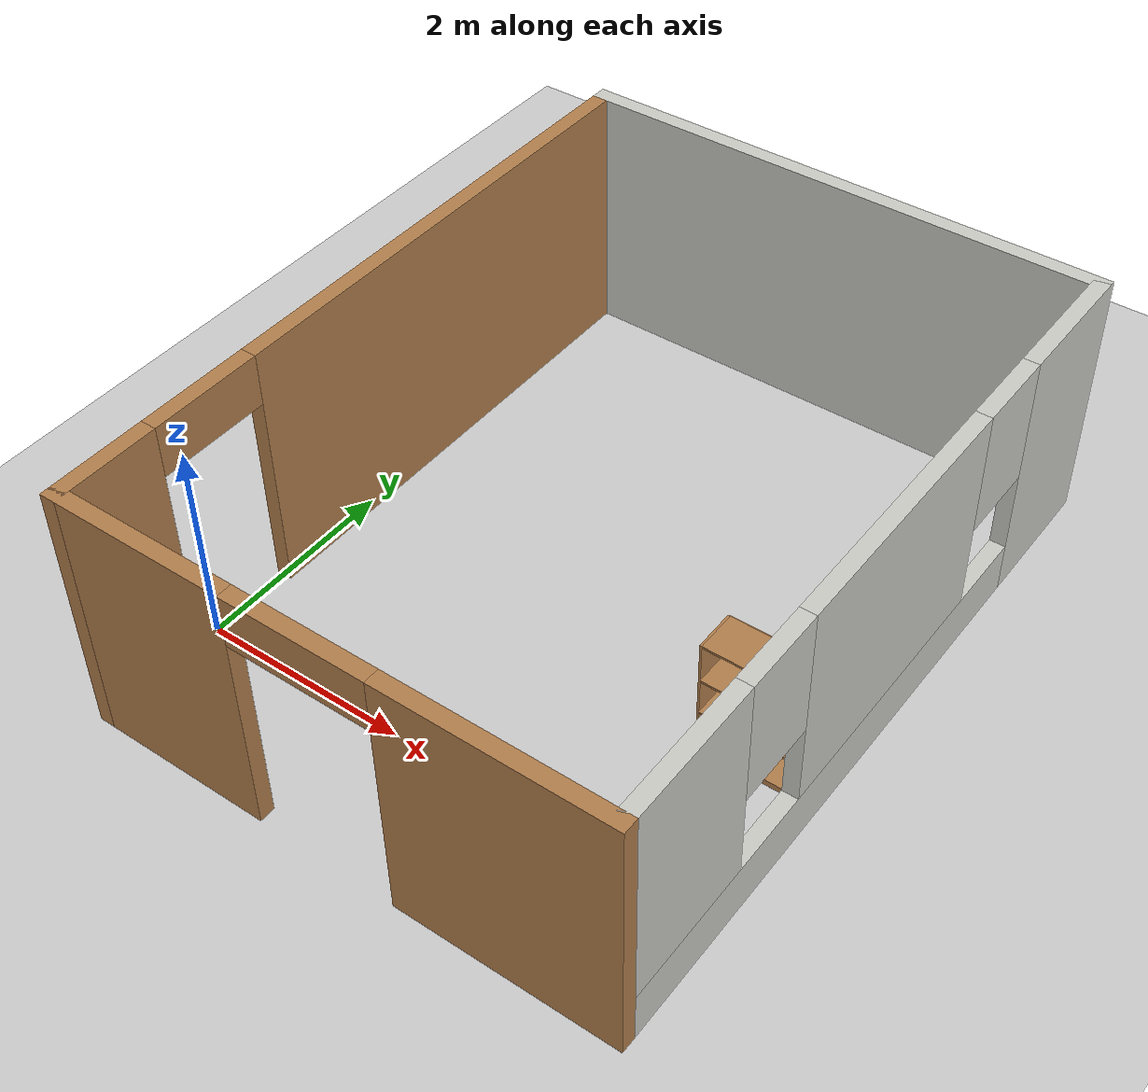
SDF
<sdf version="1.7">
 <world name="default">
  <model name="ground_plane">
   <static>1</static>
   <link name="link">
    <collision name="collision">
     <geometry><plane><normal>0 0 1</normal><size>100 100</size></plane></geometry>
     <surface>
      <contact><collide_bitmask>65535</collide_bitmask></contact>
      <friction><ode><mu>100</mu><mu2>50</mu2></ode></friction>
     </surface>
    </collision>
    <visual name="visual">
     <cast_shadows>0</cast_shadows>
     <geometry><plane><normal>0 0 1</normal><size>100 100</size></plane></geometry>
     <material>
      <script><uri>file://media/materials/scripts/gazebo.material</uri><name>Gazebo/Grey</name></script>
     </material>
    </visual>
   </link>
  </model>
  <model name="basic_house_model">
   <link name="Wall_27">
    <pose>3.5 5.975 0 0 -0 0</pose>
    <visual name="Wall_27_Visual">
     <pose>0 0 1.25 0 -0 0</pose>
     <geometry><box><size>5.25 0.15 2.5</size></box></geometry>
     <material>
      <script><uri>file://media/materials/scripts/gazebo.material</uri><name>Gazebo/CeilingTiled</name></script>
      <ambient>1 1 1 1</ambient>
      <shader type="pixel"/>
     </material>
     <meta><layer>0</layer></meta>
    </visual>
    <collision name="Wall_27_Collision">
     <pose>0 0 1.25 0 -0 0</pose>
     <geometry><box><size>5.25 0.15 2.5</size></box></geometry>
     <surface>
      <friction>
       <ode><mu>1</mu><mu2>1</mu2><fdir1>0 0 0</fdir1><slip1>0</slip1><slip2>0</slip2></ode>
       <torsional>
        <coefficient>1</coefficient>
        <patch_radius>0</patch_radius>
        <surface_radius>0</surface_radius>
        <use_patch_radius>1</use_patch_radius>
        <ode><slip>0</slip></ode>
       </torsional>
      </friction>
      <bounce><restitution_coefficient>0</restitution_coefficient><threshold>1e+06</threshold></bounce>
      <contact>
       <collide_without_contact>0</collide_without_contact>
       <collide_without_contact_bitmask>1</collide_without_contact_bitmask>
       <collide_bitmask>1</collide_bitmask>
       <ode>
        <soft_cfm>0</soft_cfm>
        <soft_erp>0.2</soft_erp>
        <kp>1e+13</kp>
        <kd>1</kd>
        <max_vel>0.01</max_vel>
        <min_depth>0</min_depth>
       </ode>
       <bullet>
        <split_impulse>1</split_impulse>
        <split_impulse_penetration_threshold>-0.01</split_impulse_penetration_threshold>
        <soft_cfm>0</soft_cfm>
        <soft_erp>0.2</soft_erp>
        <kp>1e+13</kp>
        <kd>1</kd>
       </bullet>
      </contact>
     </surface>
    </collision>
   </link>
   <link name="Wall_6">
    <pose>6.05 2.55 0 0 0 -1.5708</pose>
    <visual name="Wall_6_Visual_0">
     <pose>-2.82309 0 1.25 0 -0 0</pose>
     <geometry><box><size>1.35381 0.15 2.5</size></box></geometry>
     <material>
      <script><uri>file://media/materials/scripts/gazebo.material</uri><name>Gazebo/CeilingTiled</name></script>
      <ambient>1 1 1 1</ambient>
      <shader type="pixel"/>
     </material>
     <meta><layer>0</layer></meta>
    </visual>
    <visual name="Wall_6_Visual_1">
     <pose>0.676907 0 0.25 0 -0 0</pose>
     <geometry><box><size>5.64619 0.15 0.5</size></box></geometry>
     <material>
      <script><uri>file://media/materials/scripts/gazebo.material</uri><name>Gazebo/CeilingTiled</name></script>
      <ambient>1 1 1 1</ambient>
      <shader type="pixel"/>
     </material>
     <meta><layer>0</layer></meta>
    </visual>
    <visual name="Wall_6_Visual_2">
     <pose>-0.061529 0 1.5 0 -0 0</pose>
     <geometry><box><size>2.56931 0.15 2</size></box></geometry>
     <material>
      <script><uri>file://media/materials/scripts/gazebo.material</uri><name>Gazebo/CeilingTiled</name></script>
      <ambient>1 1 1 1</ambient>
      <shader type="pixel"/>
     </material>
     <meta><layer>0</layer></meta>
    </visual>
    <visual name="Wall_6_Visual_3">
     <pose>2.76156 0 1.5 0 -0 0</pose>
     <geometry><box><size>1.47687 0.15 2</size></box></geometry>
     <material>
      <script><uri>file://media/materials/scripts/gazebo.material</uri><name>Gazebo/CeilingTiled</name></script>
      <ambient>1 1 1 1</ambient>
      <shader type="pixel"/>
     </material>
     <meta><layer>0</layer></meta>
    </visual>
    <visual name="Wall_6_Visual_4">
     <pose>-1.74619 0 1.9 0 -0 0</pose>
     <geometry><box><size>0.8 0.15 1.2</size></box></geometry>
     <material>
      <script><uri>file://media/materials/scripts/gazebo.material</uri><name>Gazebo/CeilingTiled</name></script>
      <ambient>1 1 1 1</ambient>
      <shader type="pixel"/>
     </material>
     <meta><layer>0</layer></meta>
    </visual>
    <visual name="Wall_6_Visual_5">
     <pose>1.62313 0 1.9 0 -0 0</pose>
     <geometry><box><size>0.8 0.15 1.2</size></box></geometry>
     <material>
      <script><uri>file://media/materials/scripts/gazebo.material</uri><name>Gazebo/CeilingTiled</name></script>
      <ambient>1 1 1 1</ambient>
      <shader type="pixel"/>
     </material>
     <meta><layer>0</layer></meta>
    </visual>
    <collision name="Wall_6_Collision_0">
     <pose>-2.82309 0 1.25 0 -0 0</pose>
     <geometry><box><size>1.35381 0.15 2.5</size></box></geometry>
     <surface>
      <friction>
       <ode><mu>1</mu><mu2>1</mu2><fdir1>0 0 0</fdir1><slip1>0</slip1><slip2>0</slip2></ode>
       <torsional>
        <coefficient>1</coefficient>
        <patch_radius>0</patch_radius>
        <surface_radius>0</surface_radius>
        <use_patch_radius>1</use_patch_radius>
        <ode><slip>0</slip></ode>
       </torsional>
      </friction>
      <bounce><restitution_coefficient>0</restitution_coefficient><threshold>1e+06</threshold></bounce>
      <contact>
       <collide_without_contact>0</collide_without_contact>
       <collide_without_contact_bitmask>1</collide_without_contact_bitmask>
       <collide_bitmask>1</collide_bitmask>
       <ode>
        <soft_cfm>0</soft_cfm>
        <soft_erp>0.2</soft_erp>
        <kp>1e+13</kp>
        <kd>1</kd>
        <max_vel>0.01</max_vel>
        <min_depth>0</min_depth>
       </ode>
       <bullet>
        <split_impulse>1</split_impulse>
        <split_impulse_penetration_threshold>-0.01</split_impulse_penetration_threshold>
        <soft_cfm>0</soft_cfm>
        <soft_erp>0.2</soft_erp>
        <kp>1e+13</kp>
        <kd>1</kd>
       </bullet>
      </contact>
     </surface>
    </collision>
    <collision name="Wall_6_Collision_1">
     <pose>0.676907 0 0.25 0 -0 0</pose>
     <geometry><box><size>5.64619 0.15 0.5</size></box></geometry>
     <surface>
      <friction>
       <ode><mu>1</mu><mu2>1</mu2><fdir1>0 0 0</fdir1><slip1>0</slip1><slip2>0</slip2></ode>
       <torsional>
        <coefficient>1</coefficient>
        <patch_radius>0</patch_radius>
        <surface_radius>0</surface_radius>
        <use_patch_radius>1</use_patch_radius>
        <ode><slip>0</slip></ode>
       </torsional>
      </friction>
      <bounce><restitution_coefficient>0</restitution_coefficient><threshold>1e+06</threshold></bounce>
      <contact>
       <collide_without_contact>0</collide_without_contact>
       <collide_without_contact_bitmask>1</collide_without_contact_bitmask>
       <collide_bitmask>1</collide_bitmask>
       <ode>
        <soft_cfm>0</soft_cfm>
        <soft_erp>0.2</soft_erp>
        <kp>1e+13</kp>
        <kd>1</kd>
        <max_vel>0.01</max_vel>
        <min_depth>0</min_depth>
       </ode>
       <bullet>
        <split_impulse>1</split_impulse>
        <split_impulse_penetration_threshold>-0.01</split_impulse_penetration_threshold>
        <soft_cfm>0</soft_cfm>
        <soft_erp>0.2</soft_erp>
        <kp>1e+13</kp>
        <kd>1</kd>
       </bullet>
      </contact>
     </surface>
    </collision>
    <collision name="Wall_6_Collision_2">
     <pose>-0.061529 0 1.5 0 -0 0</pose>
     <geometry><box><size>2.56931 0.15 2</size></box></geometry>
     <surface>
      <friction>
       <ode><mu>1</mu><mu2>1</mu2><fdir1>0 0 0</fdir1><slip1>0</slip1><slip2>0</slip2></ode>
       <torsional>
        <coefficient>1</coefficient>
        <patch_radius>0</patch_radius>
        <surface_radius>0</surface_radius>
        <use_patch_radius>1</use_patch_radius>
        <ode><slip>0</slip></ode>
       </torsional>
      </friction>
      <bounce><restitution_coefficient>0</restitution_coefficient><threshold>1e+06</threshold></bounce>
      <contact>
       <collide_without_contact>0</collide_without_contact>
       <collide_without_contact_bitmask>1</collide_without_contact_bitmask>
       <collide_bitmask>1</collide_bitmask>
       <ode>
        <soft_cfm>0</soft_cfm>
        <soft_erp>0.2</soft_erp>
        <kp>1e+13</kp>
        <kd>1</kd>
        <max_vel>0.01</max_vel>
        <min_depth>0</min_depth>
       </ode>
       <bullet>
        <split_impulse>1</split_impulse>
        <split_impulse_penetration_threshold>-0.01</split_impulse_penetration_threshold>
        <soft_cfm>0</soft_cfm>
        <soft_erp>0.2</soft_erp>
        <kp>1e+13</kp>
        <kd>1</kd>
       </bullet>
      </contact>
     </surface>
    </collision>
    <collision name="Wall_6_Collision_4">
     <pose>-1.74619 0 1.9 0 -0 0</pose>
     <geometry><box><size>0.8 0.15 1.2</size></box></geometry>
     <surface>
      <friction>
       <ode><mu>1</mu><mu2>1</mu2><fdir1>0 0 0</fdir1><slip1>0</slip1><slip2>0</slip2></ode>
       <torsional>
        <coefficient>1</coefficient>
        <patch_radius>0</patch_radius>
        <surface_radius>0</surface_radius>
        <use_patch_radius>1</use_patch_radius>
        <ode><slip>0</slip></ode>
       </torsional>
      </friction>
      <bounce><restitution_coefficient>0</restitution_coefficient><threshold>1e+06</threshold></bounce>
      <contact>
       <collide_without_contact>0</collide_without_contact>
       <collide_without_contact_bitmask>1</collide_without_contact_bitmask>
       <collide_bitmask>1</collide_bitmask>
       <ode>
        <soft_cfm>0</soft_cfm>
        <soft_erp>0.2</soft_erp>
        <kp>1e+13</kp>
        <kd>1</kd>
        <max_vel>0.01</max_vel>
        <min_depth>0</min_depth>
       </ode>
       <bullet>
        <split_impulse>1</split_impulse>
        <split_impulse_penetration_threshold>-0.01</split_impulse_penetration_threshold>
        <soft_cfm>0</soft_cfm>
        <soft_erp>0.2</soft_erp>
        <kp>1e+13</kp>
        <kd>1</kd>
       </bullet>
      </contact>
     </surface>
    </collision>
    <collision name="Wall_6_Collision_3">
     <pose>2.76156 0 1.5 0 -0 0</pose>
     <geometry><box><size>1.47687 0.15 2</size></box></geometry>
     <surface>
      <friction>
       <ode><mu>1</mu><mu2>1</mu2><fdir1>0 0 0</fdir1><slip1>0</slip1><slip2>0</slip2></ode>
       <torsional>
        <coefficient>1</coefficient>
        <patch_radius>0</patch_radius>
        <surface_radius>0</surface_radius>
        <use_patch_radius>1</use_patch_radius>
        <ode><slip>0</slip></ode>
       </torsional>
      </friction>
      <bounce><restitution_coefficient>0</restitution_coefficient><threshold>1e+06</threshold></bounce>
      <contact>
       <collide_without_contact>0</collide_without_contact>
       <collide_without_contact_bitmask>1</collide_without_contact_bitmask>
       <collide_bitmask>1</collide_bitmask>
       <ode>
        <soft_cfm>0</soft_cfm>
        <soft_erp>0.2</soft_erp>
        <kp>1e+13</kp>
        <kd>1</kd>
        <max_vel>0.01</max_vel>
        <min_depth>0</min_depth>
       </ode>
       <bullet>
        <split_impulse>1</split_impulse>
        <split_impulse_penetration_threshold>-0.01</split_impulse_penetration_threshold>
        <soft_cfm>0</soft_cfm>
        <soft_erp>0.2</soft_erp>
        <kp>1e+13</kp>
        <kd>1</kd>
       </bullet>
      </contact>
     </surface>
    </collision>
    <collision name="Wall_6_Collision_5">
     <pose>1.62313 0 1.9 0 -0 0</pose>
     <geometry><box><size>0.8 0.15 1.2</size></box></geometry>
     <surface>
      <friction>
       <ode><mu>1</mu><mu2>1</mu2><fdir1>0 0 0</fdir1><slip1>0</slip1><slip2>0</slip2></ode>
       <torsional>
        <coefficient>1</coefficient>
        <patch_radius>0</patch_radius>
        <surface_radius>0</surface_radius>
        <use_patch_radius>1</use_patch_radius>
        <ode><slip>0</slip></ode>
       </torsional>
      </friction>
      <bounce><restitution_coefficient>0</restitution_coefficient><threshold>1e+06</threshold></bounce>
      <contact>
       <collide_without_contact>0</collide_without_contact>
       <collide_without_contact_bitmask>1</collide_without_contact_bitmask>
       <collide_bitmask>1</collide_bitmask>
       <ode>
        <soft_cfm>0</soft_cfm>
        <soft_erp>0.2</soft_erp>
        <kp>1e+13</kp>
        <kd>1</kd>
        <max_vel>0.01</max_vel>
        <min_depth>0</min_depth>
       </ode>
       <bullet>
        <split_impulse>1</split_impulse>
        <split_impulse_penetration_threshold>-0.01</split_impulse_penetration_threshold>
        <soft_cfm>0</soft_cfm>
        <soft_erp>0.2</soft_erp>
        <kp>1e+13</kp>
        <kd>1</kd>
       </bullet>
      </contact>
     </surface>
    </collision>
   </link>
   <link name="Wall_7">
    <pose>3.5 -0.875 0 0 -0 3.14159</pose>
    <visual name="Wall_7_Visual_0">
     <pose>-1.56742 0 1.25 0 -0 0</pose>
     <geometry><box><size>2.11515 0.15 2.5</size></box></geometry>
     <material>
      <script><uri>file://media/materials/scripts/gazebo.material</uri><name>Gazebo/Wood</name></script>
      <ambient>1 1 1 1</ambient>
      <shader type="pixel"/>
     </material>
     <meta><layer>0</layer></meta>
    </visual>
    <visual name="Wall_7_Visual_1">
     <pose>1.73186 0 1.25 0 -0 0</pose>
     <geometry><box><size>1.78627 0.15 2.5</size></box></geometry>
     <material>
      <script><uri>file://media/materials/scripts/gazebo.material</uri><name>Gazebo/Wood</name></script>
      <ambient>1 1 1 1</ambient>
      <shader type="pixel"/>
     </material>
     <meta><layer>0</layer></meta>
    </visual>
    <visual name="Wall_7_Visual_2">
     <pose>0.16444 0 2.25 0 -0 0</pose>
     <geometry><box><size>1.34858 0.15 0.5</size></box></geometry>
     <material>
      <script><uri>file://media/materials/scripts/gazebo.material</uri><name>Gazebo/Wood</name></script>
      <ambient>1 1 1 1</ambient>
      <shader type="pixel"/>
     </material>
     <meta><layer>0</layer></meta>
    </visual>
    <collision name="Wall_7_Collision_0">
     <pose>-1.56742 0 1.25 0 -0 0</pose>
     <geometry><box><size>2.11515 0.15 2.5</size></box></geometry>
     <surface>
      <friction>
       <ode><mu>1</mu><mu2>1</mu2><fdir1>0 0 0</fdir1><slip1>0</slip1><slip2>0</slip2></ode>
       <torsional>
        <coefficient>1</coefficient>
        <patch_radius>0</patch_radius>
        <surface_radius>0</surface_radius>
        <use_patch_radius>1</use_patch_radius>
        <ode><slip>0</slip></ode>
       </torsional>
      </friction>
      <bounce><restitution_coefficient>0</restitution_coefficient><threshold>1e+06</threshold></bounce>
      <contact>
       <collide_without_contact>0</collide_without_contact>
       <collide_without_contact_bitmask>1</collide_without_contact_bitmask>
       <collide_bitmask>1</collide_bitmask>
       <ode>
        <soft_cfm>0</soft_cfm>
        <soft_erp>0.2</soft_erp>
        <kp>1e+13</kp>
        <kd>1</kd>
        <max_vel>0.01</max_vel>
        <min_depth>0</min_depth>
       </ode>
       <bullet>
        <split_impulse>1</split_impulse>
        <split_impulse_penetration_threshold>-0.01</split_impulse_penetration_threshold>
        <soft_cfm>0</soft_cfm>
        <soft_erp>0.2</soft_erp>
        <kp>1e+13</kp>
        <kd>1</kd>
       </bullet>
      </contact>
     </surface>
    </collision>
    <collision name="Wall_7_Collision_1">
     <pose>1.73186 0 1.25 0 -0 0</pose>
     <geometry><box><size>1.78627 0.15 2.5</size></box></geometry>
     <surface>
      <friction>
       <ode><mu>1</mu><mu2>1</mu2><fdir1>0 0 0</fdir1><slip1>0</slip1><slip2>0</slip2></ode>
       <torsional>
        <coefficient>1</coefficient>
        <patch_radius>0</patch_radius>
        <surface_radius>0</surface_radius>
        <use_patch_radius>1</use_patch_radius>
        <ode><slip>0</slip></ode>
       </torsional>
      </friction>
      <bounce><restitution_coefficient>0</restitution_coefficient><threshold>1e+06</threshold></bounce>
      <contact>
       <collide_without_contact>0</collide_without_contact>
       <collide_without_contact_bitmask>1</collide_without_contact_bitmask>
       <collide_bitmask>1</collide_bitmask>
       <ode>
        <soft_cfm>0</soft_cfm>
        <soft_erp>0.2</soft_erp>
        <kp>1e+13</kp>
        <kd>1</kd>
        <max_vel>0.01</max_vel>
        <min_depth>0</min_depth>
       </ode>
       <bullet>
        <split_impulse>1</split_impulse>
        <split_impulse_penetration_threshold>-0.01</split_impulse_penetration_threshold>
        <soft_cfm>0</soft_cfm>
        <soft_erp>0.2</soft_erp>
        <kp>1e+13</kp>
        <kd>1</kd>
       </bullet>
      </contact>
     </surface>
    </collision>
    <collision name="Wall_7_Collision_2">
     <pose>0.16444 0 2.25 0 -0 0</pose>
     <geometry><box><size>1.34858 0.15 0.5</size></box></geometry>
     <surface>
      <friction>
       <ode><mu>1</mu><mu2>1</mu2><fdir1>0 0 0</fdir1><slip1>0</slip1><slip2>0</slip2></ode>
       <torsional>
        <coefficient>1</coefficient>
        <patch_radius>0</patch_radius>
        <surface_radius>0</surface_radius>
        <use_patch_radius>1</use_patch_radius>
        <ode><slip>0</slip></ode>
       </torsional>
      </friction>
      <bounce><restitution_coefficient>0</restitution_coefficient><threshold>1e+06</threshold></bounce>
      <contact>
       <collide_without_contact>0</collide_without_contact>
       <collide_without_contact_bitmask>1</collide_without_contact_bitmask>
       <collide_bitmask>1</collide_bitmask>
       <ode>
        <soft_cfm>0</soft_cfm>
        <soft_erp>0.2</soft_erp>
        <kp>1e+13</kp>
        <kd>1</kd>
        <max_vel>0.01</max_vel>
        <min_depth>0</min_depth>
       </ode>
       <bullet>
        <split_impulse>1</split_impulse>
        <split_impulse_penetration_threshold>-0.01</split_impulse_penetration_threshold>
        <soft_cfm>0</soft_cfm>
        <soft_erp>0.2</soft_erp>
        <kp>1e+13</kp>
        <kd>1</kd>
       </bullet>
      </contact>
     </surface>
    </collision>
   </link>
   <link name="Wall_8">
    <pose>0.95 2.55 0 0 -0 1.5708</pose>
    <visual name="Wall_8_Visual_0">
     <pose>-2.99261 0 1.25 0 -0 0</pose>
     <geometry><box><size>1.01478 0.15 2.5</size></box></geometry>
     <material>
      <script><uri>file://media/materials/scripts/gazebo.material</uri><name>Gazebo/Wood</name></script>
      <ambient>1 1 1 1</ambient>
      <shader type="pixel"/>
     </material>
     <meta><layer>0</layer></meta>
    </visual>
    <visual name="Wall_8_Visual_1">
     <pose>1.05209 0 1.25 0 -0 0</pose>
     <geometry><box><size>4.89583 0.15 2.5</size></box></geometry>
     <material>
      <script><uri>file://media/materials/scripts/gazebo.material</uri><name>Gazebo/Wood</name></script>
      <ambient>1 1 1 1</ambient>
      <shader type="pixel"/>
     </material>
     <meta><layer>0</layer></meta>
    </visual>
    <visual name="Wall_8_Visual_2">
     <pose>-1.94053 0 2.25 0 -0 0</pose>
     <geometry><box><size>1.0894 0.15 0.5</size></box></geometry>
     <material>
      <script><uri>file://media/materials/scripts/gazebo.material</uri><name>Gazebo/Wood</name></script>
      <ambient>1 1 1 1</ambient>
      <shader type="pixel"/>
     </material>
     <meta><layer>0</layer></meta>
    </visual>
    <collision name="Wall_8_Collision_1">
     <pose>1.05209 0 1.25 0 -0 0</pose>
     <geometry><box><size>4.89583 0.15 2.5</size></box></geometry>
     <surface>
      <friction>
       <ode><mu>1</mu><mu2>1</mu2><fdir1>0 0 0</fdir1><slip1>0</slip1><slip2>0</slip2></ode>
       <torsional>
        <coefficient>1</coefficient>
        <patch_radius>0</patch_radius>
        <surface_radius>0</surface_radius>
        <use_patch_radius>1</use_patch_radius>
        <ode><slip>0</slip></ode>
       </torsional>
      </friction>
      <bounce><restitution_coefficient>0</restitution_coefficient><threshold>1e+06</threshold></bounce>
      <contact>
       <collide_without_contact>0</collide_without_contact>
       <collide_without_contact_bitmask>1</collide_without_contact_bitmask>
       <collide_bitmask>1</collide_bitmask>
       <ode>
        <soft_cfm>0</soft_cfm>
        <soft_erp>0.2</soft_erp>
        <kp>1e+13</kp>
        <kd>1</kd>
        <max_vel>0.01</max_vel>
        <min_depth>0</min_depth>
       </ode>
       <bullet>
        <split_impulse>1</split_impulse>
        <split_impulse_penetration_threshold>-0.01</split_impulse_penetration_threshold>
        <soft_cfm>0</soft_cfm>
        <soft_erp>0.2</soft_erp>
        <kp>1e+13</kp>
        <kd>1</kd>
       </bullet>
      </contact>
     </surface>
    </collision>
    <collision name="Wall_8_Collision_0">
     <pose>-2.99261 0 1.25 0 -0 0</pose>
     <geometry><box><size>1.01478 0.15 2.5</size></box></geometry>
     <surface>
      <friction>
       <ode><mu>1</mu><mu2>1</mu2><fdir1>0 0 0</fdir1><slip1>0</slip1><slip2>0</slip2></ode>
       <torsional>
        <coefficient>1</coefficient>
        <patch_radius>0</patch_radius>
        <surface_radius>0</surface_radius>
        <use_patch_radius>1</use_patch_radius>
        <ode><slip>0</slip></ode>
       </torsional>
      </friction>
      <bounce><restitution_coefficient>0</restitution_coefficient><threshold>1e+06</threshold></bounce>
      <contact>
       <collide_without_contact>0</collide_without_contact>
       <collide_without_contact_bitmask>1</collide_without_contact_bitmask>
       <collide_bitmask>1</collide_bitmask>
       <ode>
        <soft_cfm>0</soft_cfm>
        <soft_erp>0.2</soft_erp>
        <kp>1e+13</kp>
        <kd>1</kd>
        <max_vel>0.01</max_vel>
        <min_depth>0</min_depth>
       </ode>
       <bullet>
        <split_impulse>1</split_impulse>
        <split_impulse_penetration_threshold>-0.01</split_impulse_penetration_threshold>
        <soft_cfm>0</soft_cfm>
        <soft_erp>0.2</soft_erp>
        <kp>1e+13</kp>
        <kd>1</kd>
       </bullet>
      </contact>
     </surface>
    </collision>
    <collision name="Wall_8_Collision_2">
     <pose>-1.94053 0 2.25 0 -0 0</pose>
     <geometry><box><size>1.0894 0.15 0.5</size></box></geometry>
     <surface>
      <friction>
       <ode><mu>1</mu><mu2>1</mu2><fdir1>0 0 0</fdir1><slip1>0</slip1><slip2>0</slip2></ode>
       <torsional>
        <coefficient>1</coefficient>
        <patch_radius>0</patch_radius>
        <surface_radius>0</surface_radius>
        <use_patch_radius>1</use_patch_radius>
        <ode><slip>0</slip></ode>
       </torsional>
      </friction>
      <bounce><restitution_coefficient>0</restitution_coefficient><threshold>1e+06</threshold></bounce>
      <contact>
       <collide_without_contact>0</collide_without_contact>
       <collide_without_contact_bitmask>1</collide_without_contact_bitmask>
       <collide_bitmask>1</collide_bitmask>
       <ode>
        <soft_cfm>0</soft_cfm>
        <soft_erp>0.2</soft_erp>
        <kp>1e+13</kp>
        <kd>1</kd>
        <max_vel>0.01</max_vel>
        <min_depth>0</min_depth>
       </ode>
       <bullet>
        <split_impulse>1</split_impulse>
        <split_impulse_penetration_threshold>-0.01</split_impulse_penetration_threshold>
        <soft_cfm>0</soft_cfm>
        <soft_erp>0.2</soft_erp>
        <kp>1e+13</kp>
        <kd>1</kd>
       </bullet>
      </contact>
     </surface>
    </collision>
   </link>
   <static>1</static>
   <pose>-0.94361 -0.326911 0 0 -0 0</pose>
  </model>
  <model name="bookshelf_1">
   <static>1</static>
   <link name="link">
    <inertial><mass>1</mass></inertial>
    <collision name="back">
     <pose>0 0.005 0.6 0 -0 0</pose>
     <geometry><box><size>0.9 0.01 1.2</size></box></geometry>
    </collision>
    <visual name="visual1">
     <pose>0 0.005 0.6 0 -0 0</pose>
     <geometry><box><size>0.9 0.01 1.2</size></box></geometry>
     <material>
      <script><uri>file://media/materials/scripts/gazebo.material</uri><name>Gazebo/Wood</name></script>
     </material>
    </visual>
    <collision name="left_side">
     <pose>0.45 -0.195 0.6 0 -0 0</pose>
     <geometry><box><size>0.02 0.4 1.2</size></box></geometry>
    </collision>
    <visual name="visual2">
     <pose>0.45 -0.195 0.6 0 -0 0</pose>
     <geometry><box><size>0.02 0.4 1.2</size></box></geometry>
     <material>
      <script><uri>file://media/materials/scripts/gazebo.material</uri><name>Gazebo/Wood</name></script>
     </material>
    </visual>
    <collision name="right_side">
     <pose>-0.45 -0.195 0.6 0 -0 0</pose>
     <geometry><box><size>0.02 0.4 1.2</size></box></geometry>
    </collision>
    <visual name="visual3">
     <pose>-0.45 -0.195 0.6 0 -0 0</pose>
     <geometry><box><size>0.02 0.4 1.2</size></box></geometry>
     <material>
      <script><uri>file://media/materials/scripts/gazebo.material</uri><name>Gazebo/Wood</name></script>
     </material>
    </visual>
    <collision name="bottom">
     <pose>0 -0.195 0.03 0 -0 0</pose>
     <geometry><box><size>0.88 0.4 0.06</size></box></geometry>
    </collision>
    <visual name="visual4">
     <pose>0 -0.195 0.03 0 -0 0</pose>
     <geometry><box><size>0.88 0.4 0.06</size></box></geometry>
     <material>
      <script><uri>file://media/materials/scripts/gazebo.material</uri><name>Gazebo/Wood</name></script>
     </material>
    </visual>
    <collision name="top">
     <pose>0 -0.195 1.19 0 -0 0</pose>
     <geometry><box><size>0.88 0.4 0.02</size></box></geometry>
    </collision>
    <visual name="visual5">
     <pose>0 -0.195 1.19 0 -0 0</pose>
     <geometry><box><size>0.88 0.4 0.02</size></box></geometry>
     <material>
      <script><uri>file://media/materials/scripts/gazebo.material</uri><name>Gazebo/Wood</name></script>
     </material>
    </visual>
    <collision name="low_shelf">
     <pose>0 -0.195 0.43 0 -0 0</pose>
     <geometry><box><size>0.88 0.4 0.02</size></box></geometry>
    </collision>
    <visual name="visual6">
     <pose>0 -0.195 0.43 0 -0 0</pose>
     <geometry><box><size>0.88 0.4 0.02</size></box></geometry>
     <material>
      <script><uri>file://media/materials/scripts/gazebo.material</uri><name>Gazebo/Wood</name></script>
     </material>
    </visual>
    <collision name="high_shelf">
     <pose>0 -0.195 0.8 0 -0 0</pose>
     <geometry><box><size>0.88 0.4 0.02</size></box></geometry>
    </collision>
    <visual name="visual7">
     <pose>0 -0.195 0.8 0 -0 0</pose>
     <geometry><box><size>0.88 0.4 0.02</size></box></geometry>
     <material>
      <script><uri>file://media/materials/scripts/gazebo.material</uri><name>Gazebo/Wood</name></script>
     </material>
    </visual>
   </link>
   <pose>4.49988 1.71829 0 0 -0 0</pose>
  </model>
  <model name="beer">
   <link name="link">
    <pose>0 0 0.115 0 -0 0</pose>
    <inertial>
     <mass>0.39</mass>
     <inertia><ixx>0.00058</ixx><ixy>0</ixy><ixz>0</ixz><iyy>0.00058</iyy><iyz>0</iyz><izz>0.00019</izz></inertia>
    </inertial>
    <collision name="collision">
     <geometry><cylinder><radius>0.055</radius><length>0.23</length></cylinder></geometry>
    </collision>
    <visual name="visual">
     <geometry><cylinder><radius>0.055</radius><length>0.23</length></cylinder></geometry>
     <material>
      <script>
       <uri>https://fuel.ignitionrobotics.org/1.0/openrobotics/models/beer/2/files/materials/scripts</uri>
       <uri>https://fuel.ignitionrobotics.org/1.0/openrobotics/models/beer/2/files/materials/textures</uri>
       <name>Beer/Diffuse</name>
      </script>
     </material>
    </visual>
   </link>
   <pose>4.24444 1.4745 0 0 -0 0</pose>
  </model>
 </world>
</sdf>
